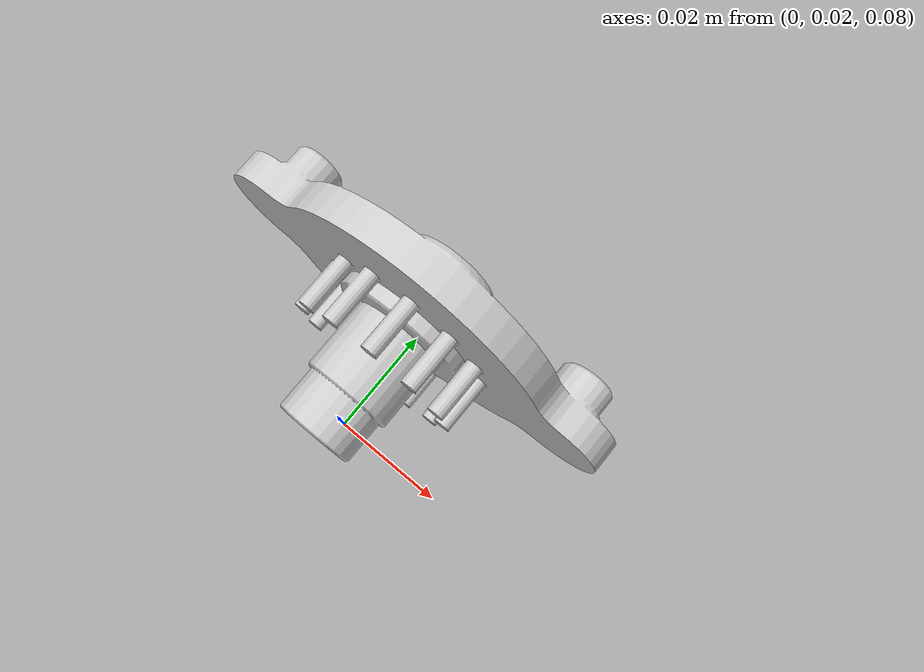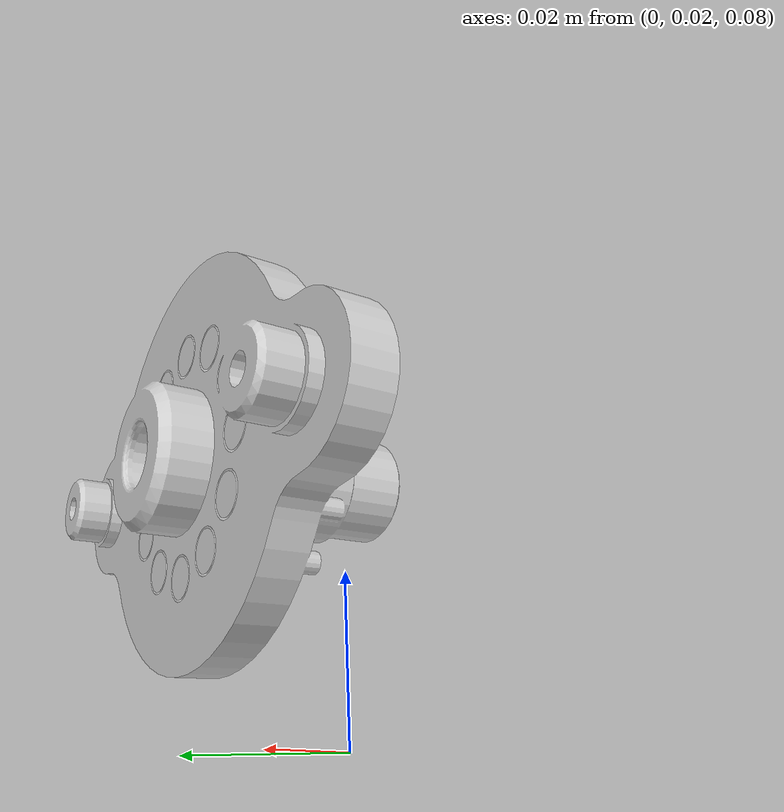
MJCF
<mujoco model="WP_Out">
  <default>
    <default class="visual">
      <geom group="2" type="mesh" contype="0" conaffinity="0"/>
    </default>
    <default class="collision">
      <geom group="3" type="mesh"/>
    </default>
  </default>
  <asset>
    <material name="None" specular="0.8000000000000002" shininess="0.5" rgba="0.8 0.8 0.8 1"/>
    <mesh file="WP_Out.obj"/>
  </asset>
  <worldbody>
    <body name="WP_Out">
      <geom material="None" mesh="WP_Out" class="visual"/>
      <geom mesh="WP_Out" class="collision"/>
    </body>
  </worldbody>
</mujoco>
